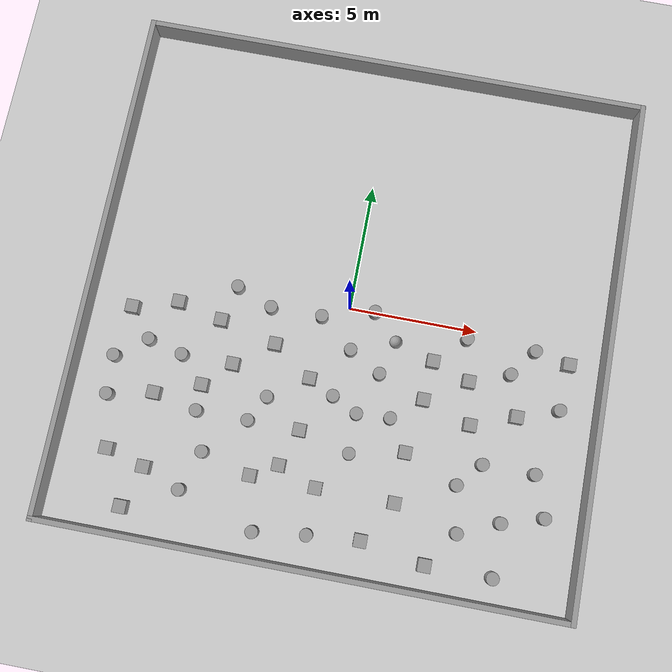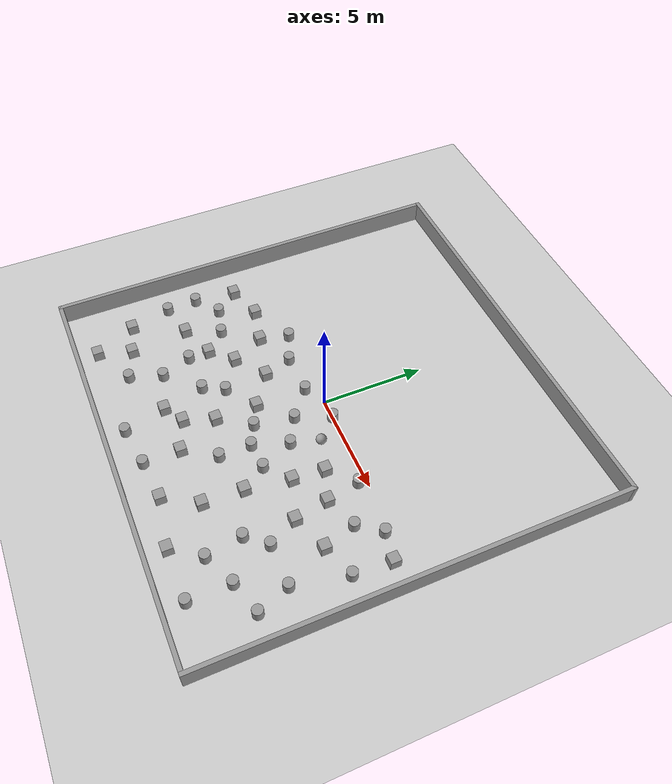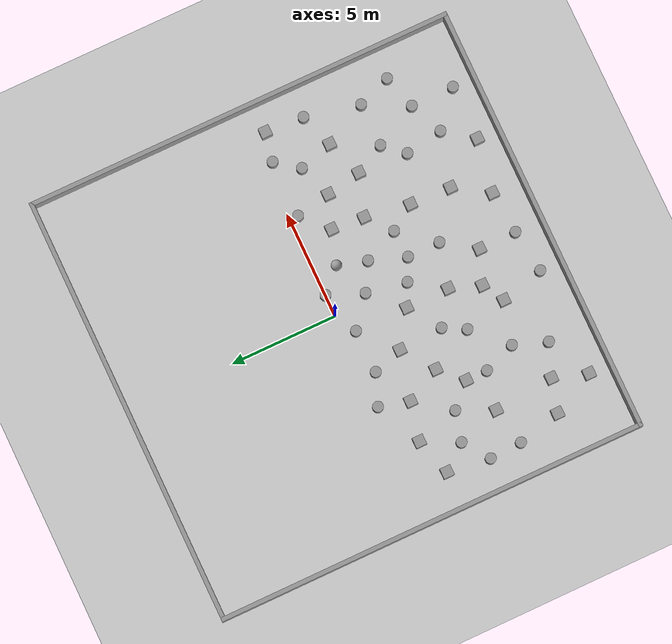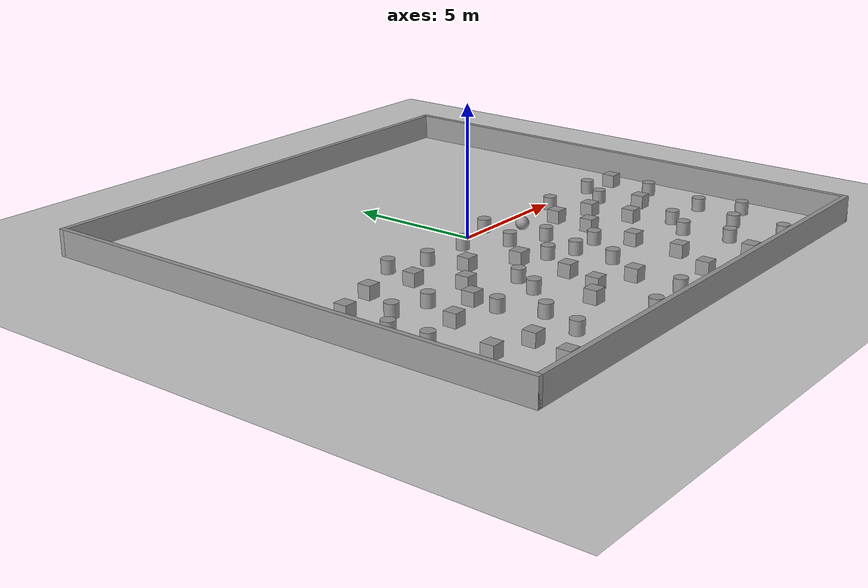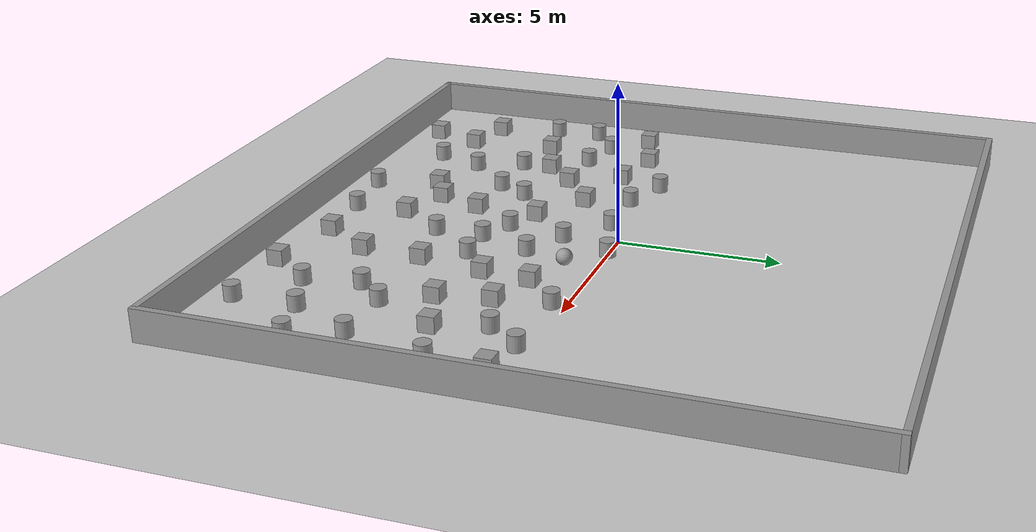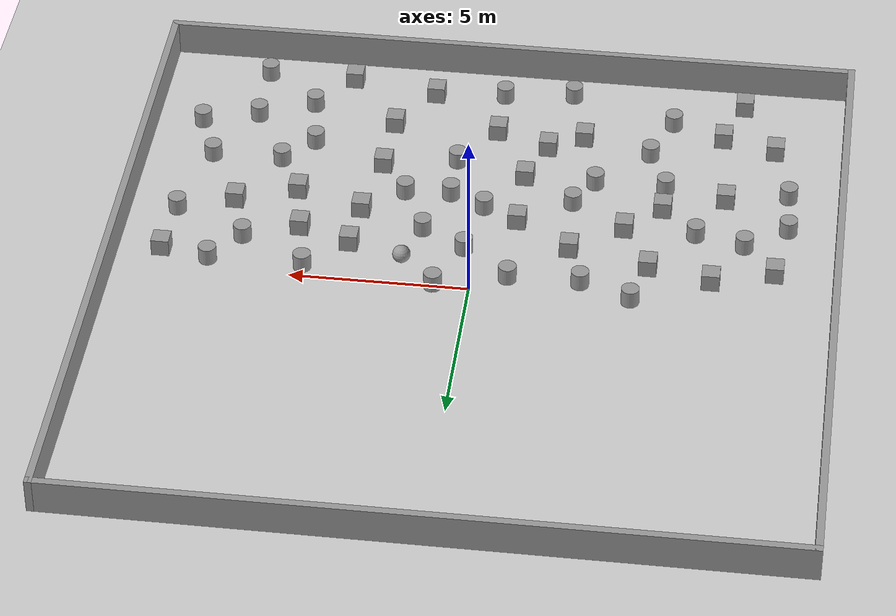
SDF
<sdf version="1.4">
 <world name="default">
  <model name="ground_plane">
   <static>1</static>
   <link name="link">
    <collision name="collision">
     <geometry><plane><normal>0 0 1</normal><size>100 100</size></plane></geometry>
     <surface><friction><ode><mu>100</mu><mu2>50</mu2></ode></friction></surface>
    </collision>
    <visual name="visual">
     <cast_shadows>0</cast_shadows>
     <geometry><plane><normal>0 0 1</normal><size>100 100</size></plane></geometry>
     <material>
      <script><uri>file://media/materials/scripts/gazebo.material</uri><name>Gazebo/Grey</name></script>
     </material>
    </visual>
    <velocity_decay><linear>0</linear><angular>0</angular></velocity_decay>
   </link>
  </model>
  <model name="obstacle">
   <link name="Wall_0">
    <collision name="Wall_0_Collision">
     <geometry><box><size>20.2 0.2 1</size></box></geometry>
     <pose>0 0 0.5 0 -0 0</pose>
    </collision>
    <visual name="Wall_0_Visual">
     <pose>0 0 0.5 0 -0 0</pose>
     <geometry><box><size>20.2 0.2 1</size></box></geometry>
     <material>
      <script><uri>file://media/materials/scripts/gazebo.material</uri><name>Gazebo/Grey</name></script>
     </material>
    </visual>
    <velocity_decay><linear>0</linear><angular>0</angular></velocity_decay>
    <pose>10 0 0 0 -0 1.5708</pose>
   </link>
   <link name="Wall_1">
    <collision name="Wall_1_Collision">
     <geometry><box><size>20.2 0.2 1</size></box></geometry>
     <pose>0 0 0.5 0 -0 0</pose>
    </collision>
    <visual name="Wall_1_Visual">
     <pose>0 0 0.5 0 -0 0</pose>
     <geometry><box><size>20.2 0.2 1</size></box></geometry>
     <material>
      <script><uri>file://media/materials/scripts/gazebo.material</uri><name>Gazebo/Grey</name></script>
     </material>
    </visual>
    <velocity_decay><linear>0</linear><angular>0</angular></velocity_decay>
    <pose>0 10 0 0 -0 3.14159</pose>
   </link>
   <link name="Wall_2">
    <collision name="Wall_2_Collision">
     <geometry><box><size>20.2 0.2 1</size></box></geometry>
     <pose>0 0 0.5 0 -0 0</pose>
    </collision>
    <visual name="Wall_2_Visual">
     <pose>0 0 0.5 0 -0 0</pose>
     <geometry><box><size>20.2 0.2 1</size></box></geometry>
     <material>
      <script><uri>file://media/materials/scripts/gazebo.material</uri><name>Gazebo/Grey</name></script>
     </material>
    </visual>
    <velocity_decay><linear>0</linear><angular>0</angular></velocity_decay>
    <pose>-10 0 0 0 0 -1.5708</pose>
   </link>
   <link name="Wall_3">
    <collision name="Wall_3_Collision">
     <geometry><box><size>20.2 0.2 1</size></box></geometry>
     <pose>0 0 0.5 0 -0 0</pose>
    </collision>
    <visual name="Wall_3_Visual">
     <pose>0 0 0.5 0 -0 0</pose>
     <geometry><box><size>20.2 0.2 1</size></box></geometry>
     <material>
      <script><uri>file://media/materials/scripts/gazebo.material</uri><name>Gazebo/Grey</name></script>
     </material>
    </visual>
    <velocity_decay><linear>0</linear><angular>0</angular></velocity_decay>
    <pose>0 -10 0 0 -0 0</pose>
   </link>
   <static>1</static>
  </model>
  <model name="unit_box_1">
   <pose>3.07223 -5.09197 0.25 0 1e-06 1e-06</pose>
   <link name="link">
    <inertial>
     <mass>1</mass>
     <inertia><ixx>1</ixx><ixy>0</ixy><ixz>0</ixz><iyy>1</iyy><iyz>0</iyz><izz>1</izz></inertia>
    </inertial>
    <collision name="collision"><geometry><box><size>0.5 0.5 0.5</size></box></geometry></collision>
    <visual name="visual">
     <geometry><box><size>0.5 0.5 0.5</size></box></geometry>
     <material>
      <script><uri>file://media/materials/scripts/gazebo.material</uri><name>Gazebo/Grey</name></script>
     </material>
    </visual>
    <velocity_decay><linear>0</linear><angular>0</angular></velocity_decay>
   </link>
   <static>0</static>
  </model>
  <model name="unit_box_2">
   <pose>-8 -7 0.249999 -2e-06 1e-06 -1e-06</pose>
   <link name="link">
    <inertial>
     <mass>1</mass>
     <inertia><ixx>1</ixx><ixy>0</ixy><ixz>0</ixz><iyy>1</iyy><iyz>0</iyz><izz>1</izz></inertia>
    </inertial>
    <collision name="collision"><geometry><box><size>0.5 0.5 0.5</size></box></geometry></collision>
    <visual name="visual">
     <geometry><box><size>0.5 0.5 0.5</size></box></geometry>
     <material>
      <script><uri>file://media/materials/scripts/gazebo.material</uri><name>Gazebo/Grey</name></script>
     </material>
    </visual>
    <velocity_decay><linear>0</linear><angular>0</angular></velocity_decay>
   </link>
   <static>0</static>
  </model>
  <model name="unit_cylinder_5">
   <pose>7.3318 -0.384496 0.249991 0 -0 0</pose>
   <link name="link">
    <inertial>
     <mass>1</mass>
     <inertia><ixx>1</ixx><ixy>0</ixy><ixz>0</ixz><iyy>1</iyy><iyz>0</iyz><izz>1</izz></inertia>
    </inertial>
    <collision name="collision">
     <geometry><cylinder><radius>0.25</radius><length>0.5</length></cylinder></geometry>
    </collision>
    <visual name="visual">
     <geometry><cylinder><radius>0.25</radius><length>0.5</length></cylinder></geometry>
     <material>
      <script><uri>file://media/materials/scripts/gazebo.material</uri><name>Gazebo/Grey</name></script>
     </material>
    </visual>
    <velocity_decay><linear>0</linear><angular>0</angular></velocity_decay>
   </link>
   <static>0</static>
  </model>
  <model name="unit_cylinder_6">
   <pose>-5 -8 0.25 0 -0 0</pose>
   <link name="link">
    <inertial>
     <mass>1</mass>
     <inertia><ixx>1</ixx><ixy>0</ixy><ixz>0</ixz><iyy>1</iyy><iyz>0</iyz><izz>1</izz></inertia>
    </inertial>
    <collision name="collision">
     <geometry><cylinder><radius>0.25</radius><length>0.5</length></cylinder></geometry>
    </collision>
    <visual name="visual">
     <geometry><cylinder><radius>0.25</radius><length>0.5</length></cylinder></geometry>
     <material>
      <script><uri>file://media/materials/scripts/gazebo.material</uri><name>Gazebo/Grey</name></script>
     </material>
    </visual>
    <velocity_decay><linear>0</linear><angular>0</angular></velocity_decay>
   </link>
   <static>0</static>
  </model>
  <model name="unit_cylinder_7">
   <pose>-7.37957 -2.65 0.249991 0 -0 0</pose>
   <link name="link">
    <inertial>
     <mass>1</mass>
     <inertia><ixx>1</ixx><ixy>0</ixy><ixz>0</ixz><iyy>1</iyy><iyz>0</iyz><izz>1</izz></inertia>
    </inertial>
    <collision name="collision">
     <geometry><cylinder><radius>0.25</radius><length>0.5</length></cylinder></geometry>
    </collision>
    <visual name="visual">
     <geometry><cylinder><radius>0.25</radius><length>0.5</length></cylinder></geometry>
     <material>
      <script><uri>file://media/materials/scripts/gazebo.material</uri><name>Gazebo/Grey</name></script>
     </material>
    </visual>
    <velocity_decay><linear>0</linear><angular>0</angular></velocity_decay>
   </link>
   <static>0</static>
  </model>
  <model name="unit_cylinder_11">
   <pose>7 -7 0.25 0 -0 0</pose>
   <link name="link">
    <inertial>
     <mass>1</mass>
     <inertia><ixx>1</ixx><ixy>0</ixy><ixz>0</ixz><iyy>1</iyy><iyz>0</iyz><izz>1</izz></inertia>
    </inertial>
    <collision name="collision">
     <geometry><cylinder><radius>0.25</radius><length>0.5</length></cylinder></geometry>
    </collision>
    <visual name="visual">
     <geometry><cylinder><radius>0.25</radius><length>0.5</length></cylinder></geometry>
     <material>
      <script><uri>file://media/materials/scripts/gazebo.material</uri><name>Gazebo/Grey</name></script>
     </material>
    </visual>
    <velocity_decay><linear>0</linear><angular>0</angular></velocity_decay>
   </link>
   <static>0</static>
  </model>
  <model name="unit_box_8">
   <pose>5 -2 0.249999 -2e-06 -1e-06 -3e-06</pose>
   <link name="link">
    <inertial>
     <mass>1</mass>
     <inertia><ixx>1</ixx><ixy>0</ixy><ixz>0</ixz><iyy>1</iyy><iyz>0</iyz><izz>1</izz></inertia>
    </inertial>
    <collision name="collision"><geometry><box><size>0.5 0.5 0.5</size></box></geometry></collision>
    <visual name="visual">
     <geometry><box><size>0.5 0.5 0.5</size></box></geometry>
     <material>
      <script><uri>file://media/materials/scripts/gazebo.material</uri><name>Gazebo/Grey</name></script>
     </material>
    </visual>
    <velocity_decay><linear>0</linear><angular>0</angular></velocity_decay>
   </link>
   <static>0</static>
  </model>
  <model name="unit_box_9">
   <pose>-4 -3 0.249999 1e-06 1e-06 0</pose>
   <link name="link">
    <inertial>
     <mass>1</mass>
     <inertia><ixx>1</ixx><ixy>0</ixy><ixz>0</ixz><iyy>1</iyy><iyz>0</iyz><izz>1</izz></inertia>
    </inertial>
    <collision name="collision"><geometry><box><size>0.5 0.5 0.5</size></box></geometry></collision>
    <visual name="visual">
     <geometry><box><size>0.5 0.5 0.5</size></box></geometry>
     <material>
      <script><uri>file://media/materials/scripts/gazebo.material</uri><name>Gazebo/Grey</name></script>
     </material>
    </visual>
    <velocity_decay><linear>0</linear><angular>0</angular></velocity_decay>
   </link>
   <static>0</static>
  </model>
  <model name="unit_box_10">
   <pose>3 -7 0.249999 -1e-06 -2e-06 1e-06</pose>
   <link name="link">
    <inertial>
     <mass>1</mass>
     <inertia><ixx>1</ixx><ixy>0</ixy><ixz>0</ixz><iyy>1</iyy><iyz>0</iyz><izz>1</izz></inertia>
    </inertial>
    <collision name="collision"><geometry><box><size>0.5 0.5 0.5</size></box></geometry></collision>
    <visual name="visual">
     <geometry><box><size>0.5 0.5 0.5</size></box></geometry>
     <material>
      <script><uri>file://media/materials/scripts/gazebo.material</uri><name>Gazebo/Grey</name></script>
     </material>
    </visual>
    <velocity_decay><linear>0</linear><angular>0</angular></velocity_decay>
   </link>
   <static>0</static>
  </model>
  <model name="unit_cylinder_12">
   <pose>-0 -8.74103 0.249999 -0 -0 -0</pose>
   <link name="link">
    <inertial>
     <mass>1</mass>
     <inertia><ixx>1</ixx><ixy>0</ixy><ixz>0</ixz><iyy>1</iyy><iyz>0</iyz><izz>1</izz></inertia>
    </inertial>
    <collision name="collision">
     <geometry><cylinder><radius>0.25</radius><length>0.5</length></cylinder></geometry>
    </collision>
    <visual name="visual">
     <geometry><cylinder><radius>0.25</radius><length>0.5</length></cylinder></geometry>
     <material>
      <script><uri>file://media/materials/scripts/gazebo.material</uri><name>Gazebo/Grey</name></script>
     </material>
    </visual>
    <velocity_decay><linear>0</linear><angular>0</angular></velocity_decay>
   </link>
   <static>0</static>
  </model>
  <model name="unit_box_11">
   <pose>-2.50033 -7 0.249999 -1e-06 -2e-06 1e-06</pose>
   <link name="link">
    <inertial>
     <mass>1</mass>
     <inertia><ixx>1</ixx><ixy>0</ixy><ixz>0</ixz><iyy>1</iyy><iyz>0</iyz><izz>1</izz></inertia>
    </inertial>
    <collision name="collision"><geometry><box><size>0.5 0.5 0.5</size></box></geometry></collision>
    <visual name="visual">
     <geometry><box><size>0.5 0.5 0.5</size></box></geometry>
     <material>
      <script><uri>file://media/materials/scripts/gazebo.material</uri><name>Gazebo/Grey</name></script>
     </material>
    </visual>
    <velocity_decay><linear>0</linear><angular>0</angular></velocity_decay>
   </link>
   <static>0</static>
  </model>
  <model name="unit_cylinder_16">
   <pose>-3 -0.561679 0.25 0 -0 0</pose>
   <link name="link">
    <inertial>
     <mass>1</mass>
     <inertia><ixx>1</ixx><ixy>0</ixy><ixz>0</ixz><iyy>1</iyy><iyz>0</iyz><izz>1</izz></inertia>
    </inertial>
    <collision name="collision">
     <geometry><cylinder><radius>0.25</radius><length>0.5</length></cylinder></geometry>
    </collision>
    <visual name="visual">
     <geometry><cylinder><radius>0.25</radius><length>0.5</length></cylinder></geometry>
     <material>
      <script><uri>file://media/materials/scripts/gazebo.material</uri><name>Gazebo/Grey</name></script>
     </material>
    </visual>
    <velocity_decay><linear>0</linear><angular>0</angular></velocity_decay>
   </link>
   <static>0</static>
  </model>
  <model name="unit_box_13">
   <pose>-0.999999 -3 0.249999 2e-06 1e-06 8.07794e-28</pose>
   <link name="link">
    <inertial>
     <mass>1</mass>
     <inertia><ixx>1</ixx><ixy>0</ixy><ixz>0</ixz><iyy>1</iyy><iyz>0</iyz><izz>1</izz></inertia>
    </inertial>
    <collision name="collision"><geometry><box><size>0.5 0.5 0.5</size></box></geometry></collision>
    <visual name="visual">
     <geometry><box><size>0.5 0.5 0.5</size></box></geometry>
     <material>
      <script><uri>file://media/materials/scripts/gazebo.material</uri><name>Gazebo/Grey</name></script>
     </material>
    </visual>
    <velocity_decay><linear>0</linear><angular>0</angular></velocity_decay>
   </link>
   <static>0</static>
  </model>
  <model name="unit_cylinder_17">
   <pose>1.5915 -2.34142 0.249999 -0 -0 -0</pose>
   <link name="link">
    <inertial>
     <mass>1</mass>
     <inertia><ixx>1</ixx><ixy>0</ixy><ixz>0</ixz><iyy>1</iyy><iyz>0</iyz><izz>1</izz></inertia>
    </inertial>
    <collision name="collision">
     <geometry><cylinder><radius>0.25</radius><length>0.5</length></cylinder></geometry>
    </collision>
    <visual name="visual">
     <geometry><cylinder><radius>0.25</radius><length>0.5</length></cylinder></geometry>
     <material>
      <script><uri>file://media/materials/scripts/gazebo.material</uri><name>Gazebo/Grey</name></script>
     </material>
    </visual>
    <velocity_decay><linear>0</linear><angular>0</angular></velocity_decay>
   </link>
   <static>0</static>
  </model>
  <model name="unit_cylinder_18">
   <pose>1 -5.52202 0.249999 -0 -0 -0</pose>
   <link name="link">
    <inertial>
     <mass>1</mass>
     <inertia><ixx>1</ixx><ixy>0</ixy><ixz>0</ixz><iyy>1</iyy><iyz>0</iyz><izz>1</izz></inertia>
    </inertial>
    <collision name="collision">
     <geometry><cylinder><radius>0.25</radius><length>0.5</length></cylinder></geometry>
    </collision>
    <visual name="visual">
     <geometry><cylinder><radius>0.25</radius><length>0.5</length></cylinder></geometry>
     <material>
      <script><uri>file://media/materials/scripts/gazebo.material</uri><name>Gazebo/Grey</name></script>
     </material>
    </visual>
    <velocity_decay><linear>0</linear><angular>0</angular></velocity_decay>
   </link>
   <static>0</static>
  </model>
  <model name="unit_cylinder_19">
   <pose>-5 -5 0.249999 -0 -0 -0</pose>
   <link name="link">
    <inertial>
     <mass>1</mass>
     <inertia><ixx>1</ixx><ixy>0</ixy><ixz>0</ixz><iyy>1</iyy><iyz>0</iyz><izz>1</izz></inertia>
    </inertial>
    <collision name="collision">
     <geometry><cylinder><radius>0.25</radius><length>0.5</length></cylinder></geometry>
    </collision>
    <visual name="visual">
     <geometry><cylinder><radius>0.25</radius><length>0.5</length></cylinder></geometry>
     <material>
      <script><uri>file://media/materials/scripts/gazebo.material</uri><name>Gazebo/Grey</name></script>
     </material>
    </visual>
    <velocity_decay><linear>0</linear><angular>0</angular></velocity_decay>
   </link>
   <static>0</static>
  </model>
  <model name="unit_cylinder_20">
   <pose>8 -5 0.25 0 -0 0</pose>
   <link name="link">
    <inertial>
     <mass>1</mass>
     <inertia><ixx>1</ixx><ixy>0</ixy><ixz>0</ixz><iyy>1</iyy><iyz>0</iyz><izz>1</izz></inertia>
    </inertial>
    <collision name="collision">
     <geometry><cylinder><radius>0.25</radius><length>0.5</length></cylinder></geometry>
    </collision>
    <visual name="visual">
     <geometry><cylinder><radius>0.25</radius><length>0.5</length></cylinder></geometry>
     <material>
      <script><uri>file://media/materials/scripts/gazebo.material</uri><name>Gazebo/Grey</name></script>
     </material>
    </visual>
    <velocity_decay><linear>0</linear><angular>0</angular></velocity_decay>
   </link>
   <static>0</static>
  </model>
  <model name="unit_box_15">
   <pose>8.674 -0.655566 0.249999 1e-06 2e-06 2e-06</pose>
   <link name="link">
    <inertial>
     <mass>1</mass>
     <inertia><ixx>1</ixx><ixy>0</ixy><ixz>0</ixz><iyy>1</iyy><iyz>0</iyz><izz>1</izz></inertia>
    </inertial>
    <collision name="collision"><geometry><box><size>0.5 0.5 0.5</size></box></geometry></collision>
    <visual name="visual">
     <geometry><box><size>0.5 0.5 0.5</size></box></geometry>
     <material>
      <script><uri>file://media/materials/scripts/gazebo.material</uri><name>Gazebo/Grey</name></script>
     </material>
    </visual>
    <velocity_decay><linear>0</linear><angular>0</angular></velocity_decay>
   </link>
   <static>0</static>
  </model>
  <model name="unit_box_16">
   <pose>7 -3 0.249999 -1e-06 -2e-06 -3e-06</pose>
   <link name="link">
    <inertial>
     <mass>1</mass>
     <inertia><ixx>1</ixx><ixy>0</ixy><ixz>0</ixz><iyy>1</iyy><iyz>0</iyz><izz>1</izz></inertia>
    </inertial>
    <collision name="collision"><geometry><box><size>0.5 0.5 0.5</size></box></geometry></collision>
    <visual name="visual">
     <geometry><box><size>0.5 0.5 0.5</size></box></geometry>
     <material>
      <script><uri>file://media/materials/scripts/gazebo.material</uri><name>Gazebo/Grey</name></script>
     </material>
    </visual>
    <velocity_decay><linear>0</linear><angular>0</angular></velocity_decay>
   </link>
   <static>0</static>
  </model>
  <model name="unit_cylinder_1">
   <pose>-1 -0.544952 0.25 0 -0 0</pose>
   <link name="link">
    <inertial>
     <mass>1</mass>
     <inertia><ixx>1</ixx><ixy>0</ixy><ixz>0</ixz><iyy>1</iyy><iyz>0</iyz><izz>1</izz></inertia>
    </inertial>
    <collision name="collision">
     <geometry><cylinder><radius>0.25</radius><length>0.5</length></cylinder></geometry>
    </collision>
    <visual name="visual">
     <geometry><cylinder><radius>0.25</radius><length>0.5</length></cylinder></geometry>
     <material>
      <script><uri>file://media/materials/scripts/gazebo.material</uri><name>Gazebo/Grey</name></script>
     </material>
    </visual>
    <velocity_decay><linear>0</linear><angular>0</angular></velocity_decay>
   </link>
   <static>0</static>
  </model>
  <model name="unit_cylinder_2_0">
   <pose>1 0 0.25 0 -0 0</pose>
   <link name="link">
    <inertial>
     <mass>1</mass>
     <inertia><ixx>1</ixx><ixy>0</ixy><ixz>0</ixz><iyy>1</iyy><iyz>0</iyz><izz>1</izz></inertia>
    </inertial>
    <collision name="collision">
     <geometry><cylinder><radius>0.25</radius><length>0.5</length></cylinder></geometry>
    </collision>
    <visual name="visual">
     <geometry><cylinder><radius>0.25</radius><length>0.5</length></cylinder></geometry>
     <material>
      <script><uri>file://media/materials/scripts/gazebo.material</uri><name>Gazebo/Grey</name></script>
     </material>
    </visual>
    <velocity_decay><linear>0</linear><angular>0</angular></velocity_decay>
   </link>
   <static>0</static>
  </model>
  <model name="unit_cylinder_3_0">
   <pose>0.338659 -1.63315 0.249995 0 -0 0</pose>
   <link name="link">
    <inertial>
     <mass>1</mass>
     <inertia><ixx>1</ixx><ixy>0</ixy><ixz>0</ixz><iyy>1</iyy><iyz>0</iyz><izz>1</izz></inertia>
    </inertial>
    <collision name="collision">
     <geometry><cylinder><radius>0.25</radius><length>0.5</length></cylinder></geometry>
    </collision>
    <visual name="visual">
     <geometry><cylinder><radius>0.25</radius><length>0.5</length></cylinder></geometry>
     <material>
      <script><uri>file://media/materials/scripts/gazebo.material</uri><name>Gazebo/Grey</name></script>
     </material>
    </visual>
    <velocity_decay><linear>0</linear><angular>0</angular></velocity_decay>
   </link>
   <static>0</static>
  </model>
  <model name="unit_box_4_0">
   <pose>-4.79758 -1.40389 0.249999 2e-06 1e-06 1e-06</pose>
   <link name="link">
    <inertial>
     <mass>1</mass>
     <inertia><ixx>1</ixx><ixy>0</ixy><ixz>0</ixz><iyy>1</iyy><iyz>0</iyz><izz>1</izz></inertia>
    </inertial>
    <collision name="collision"><geometry><box><size>0.5 0.5 0.5</size></box></geometry></collision>
    <visual name="visual">
     <geometry><box><size>0.5 0.5 0.5</size></box></geometry>
     <material>
      <script><uri>file://media/materials/scripts/gazebo.material</uri><name>Gazebo/Grey</name></script>
     </material>
    </visual>
    <velocity_decay><linear>0</linear><angular>0</angular></velocity_decay>
   </link>
   <static>0</static>
  </model>
  <model name="unit_box_5_0">
   <pose>-6.56142 -1 0.249999 2e-06 -8.07794e-28 1e-06</pose>
   <link name="link">
    <inertial>
     <mass>1</mass>
     <inertia><ixx>1</ixx><ixy>0</ixy><ixz>0</ixz><iyy>1</iyy><iyz>0</iyz><izz>1</izz></inertia>
    </inertial>
    <collision name="collision"><geometry><box><size>0.5 0.5 0.5</size></box></geometry></collision>
    <visual name="visual">
     <geometry><box><size>0.5 0.5 0.5</size></box></geometry>
     <material>
      <script><uri>file://media/materials/scripts/gazebo.material</uri><name>Gazebo/Grey</name></script>
     </material>
    </visual>
    <velocity_decay><linear>0</linear><angular>0</angular></velocity_decay>
   </link>
   <static>0</static>
  </model>
  <model name="unit_cylinder_6_0">
   <pose>-6 -3 0.25 0 -0 0</pose>
   <link name="link">
    <inertial>
     <mass>1</mass>
     <inertia><ixx>1</ixx><ixy>0</ixy><ixz>0</ixz><iyy>1</iyy><iyz>0</iyz><izz>1</izz></inertia>
    </inertial>
    <collision name="collision">
     <geometry><cylinder><radius>0.25</radius><length>0.5</length></cylinder></geometry>
    </collision>
    <visual name="visual">
     <geometry><cylinder><radius>0.25</radius><length>0.5</length></cylinder></geometry>
     <material>
      <script><uri>file://media/materials/scripts/gazebo.material</uri><name>Gazebo/Grey</name></script>
     </material>
    </visual>
    <velocity_decay><linear>0</linear><angular>0</angular></velocity_decay>
   </link>
   <static>0</static>
  </model>
  <model name="unit_cylinder_19_0">
   <pose>-8.48394 -5 0.25 0 -0 0</pose>
   <link name="link">
    <inertial>
     <mass>1</mass>
     <inertia><ixx>1</ixx><ixy>0</ixy><ixz>0</ixz><iyy>1</iyy><iyz>0</iyz><izz>1</izz></inertia>
    </inertial>
    <collision name="collision">
     <geometry><cylinder><radius>0.25</radius><length>0.5</length></cylinder></geometry>
    </collision>
    <visual name="visual">
     <geometry><cylinder><radius>0.25</radius><length>0.5</length></cylinder></geometry>
     <material>
      <script><uri>file://media/materials/scripts/gazebo.material</uri><name>Gazebo/Grey</name></script>
     </material>
    </visual>
    <velocity_decay><linear>0</linear><angular>0</angular></velocity_decay>
   </link>
   <static>0</static>
  </model>
  <model name="unit_box_18">
   <pose>-6.73354 -4.63038 0.249999 2e-06 -1e-06 -8.07794e-28</pose>
   <link name="link">
    <inertial>
     <mass>1</mass>
     <inertia><ixx>1</ixx><ixy>0</ixy><ixz>0</ixz><iyy>1</iyy><iyz>0</iyz><izz>1</izz></inertia>
    </inertial>
    <collision name="collision"><geometry><box><size>0.5 0.5 0.5</size></box></geometry></collision>
    <visual name="visual">
     <geometry><box><size>0.5 0.5 0.5</size></box></geometry>
     <material>
      <script><uri>file://media/materials/scripts/gazebo.material</uri><name>Gazebo/Grey</name></script>
     </material>
    </visual>
    <velocity_decay><linear>0</linear><angular>0</angular></velocity_decay>
   </link>
   <static>0</static>
  </model>
  <model name="unit_cylinder_20_0">
   <pose>-3 -5 0.25 0 -0 0</pose>
   <link name="link">
    <inertial>
     <mass>1</mass>
     <inertia><ixx>1</ixx><ixy>0</ixy><ixz>0</ixz><iyy>1</iyy><iyz>0</iyz><izz>1</izz></inertia>
    </inertial>
    <collision name="collision">
     <geometry><cylinder><radius>0.25</radius><length>0.5</length></cylinder></geometry>
    </collision>
    <visual name="visual">
     <geometry><cylinder><radius>0.25</radius><length>0.5</length></cylinder></geometry>
     <material>
      <script><uri>file://media/materials/scripts/gazebo.material</uri><name>Gazebo/Grey</name></script>
     </material>
    </visual>
    <velocity_decay><linear>0</linear><angular>0</angular></velocity_decay>
   </link>
   <static>0</static>
  </model>
  <model name="unit_box_19">
   <pose>-7 -9 0.249999 2e-06 -1e-06 -1e-06</pose>
   <link name="link">
    <inertial>
     <mass>1</mass>
     <inertia><ixx>1</ixx><ixy>0</ixy><ixz>0</ixz><iyy>1</iyy><iyz>0</iyz><izz>1</izz></inertia>
    </inertial>
    <collision name="collision"><geometry><box><size>0.5 0.5 0.5</size></box></geometry></collision>
    <visual name="visual">
     <geometry><box><size>0.5 0.5 0.5</size></box></geometry>
     <material>
      <script><uri>file://media/materials/scripts/gazebo.material</uri><name>Gazebo/Grey</name></script>
     </material>
    </visual>
    <velocity_decay><linear>0</linear><angular>0</angular></velocity_decay>
   </link>
   <static>0</static>
  </model>
  <model name="unit_box_20">
   <pose>-1 -5 0.25 0 0 -2e-06</pose>
   <link name="link">
    <inertial>
     <mass>1</mass>
     <inertia><ixx>1</ixx><ixy>0</ixy><ixz>0</ixz><iyy>1</iyy><iyz>0</iyz><izz>1</izz></inertia>
    </inertial>
    <collision name="collision"><geometry><box><size>0.5 0.5 0.5</size></box></geometry></collision>
    <visual name="visual">
     <geometry><box><size>0.5 0.5 0.5</size></box></geometry>
     <material>
      <script><uri>file://media/materials/scripts/gazebo.material</uri><name>Gazebo/Grey</name></script>
     </material>
    </visual>
    <velocity_decay><linear>0</linear><angular>0</angular></velocity_decay>
   </link>
   <static>0</static>
  </model>
  <model name="unit_cylinder_22">
   <pose>1 -4 0.25 0 -0 0</pose>
   <link name="link">
    <inertial>
     <mass>1</mass>
     <inertia><ixx>1</ixx><ixy>0</ixy><ixz>0</ixz><iyy>1</iyy><iyz>0</iyz><izz>1</izz></inertia>
    </inertial>
    <collision name="collision">
     <geometry><cylinder><radius>0.25</radius><length>0.5</length></cylinder></geometry>
    </collision>
    <visual name="visual">
     <geometry><cylinder><radius>0.25</radius><length>0.5</length></cylinder></geometry>
     <material>
      <script><uri>file://media/materials/scripts/gazebo.material</uri><name>Gazebo/Grey</name></script>
     </material>
    </visual>
    <velocity_decay><linear>0</linear><angular>0</angular></velocity_decay>
   </link>
   <static>0</static>
  </model>
  <model name="unit_box_21">
   <pose>3.41119 -3 0.249999 -1e-06 -2e-06 -4e-06</pose>
   <link name="link">
    <inertial>
     <mass>1</mass>
     <inertia><ixx>1</ixx><ixy>0</ixy><ixz>0</ixz><iyy>1</iyy><iyz>0</iyz><izz>1</izz></inertia>
    </inertial>
    <collision name="collision"><geometry><box><size>0.5 0.5 0.5</size></box></geometry></collision>
    <visual name="visual">
     <geometry><box><size>0.5 0.5 0.5</size></box></geometry>
     <material>
      <script><uri>file://media/materials/scripts/gazebo.material</uri><name>Gazebo/Grey</name></script>
     </material>
    </visual>
    <velocity_decay><linear>0</linear><angular>0</angular></velocity_decay>
   </link>
   <static>0</static>
  </model>
  <model name="unit_cylinder_23">
   <pose>6 -5 0.25 0 -0 0</pose>
   <link name="link">
    <inertial>
     <mass>1</mass>
     <inertia><ixx>1</ixx><ixy>0</ixy><ixz>0</ixz><iyy>1</iyy><iyz>0</iyz><izz>1</izz></inertia>
    </inertial>
    <collision name="collision">
     <geometry><cylinder><radius>0.25</radius><length>0.5</length></cylinder></geometry>
    </collision>
    <visual name="visual">
     <geometry><cylinder><radius>0.25</radius><length>0.5</length></cylinder></geometry>
     <material>
      <script><uri>file://media/materials/scripts/gazebo.material</uri><name>Gazebo/Grey</name></script>
     </material>
    </visual>
    <velocity_decay><linear>0</linear><angular>0</angular></velocity_decay>
   </link>
   <static>0</static>
  </model>
  <model name="unit_box_22">
   <pose>-0 -7 0.249999 -1e-06 -2e-06 3e-06</pose>
   <link name="link">
    <inertial>
     <mass>1</mass>
     <inertia><ixx>1</ixx><ixy>0</ixy><ixz>0</ixz><iyy>1</iyy><iyz>0</iyz><izz>1</izz></inertia>
    </inertial>
    <collision name="collision"><geometry><box><size>0.5 0.5 0.5</size></box></geometry></collision>
    <visual name="visual">
     <geometry><box><size>0.5 0.5 0.5</size></box></geometry>
     <material>
      <script><uri>file://media/materials/scripts/gazebo.material</uri><name>Gazebo/Grey</name></script>
     </material>
    </visual>
    <velocity_decay><linear>0</linear><angular>0</angular></velocity_decay>
   </link>
   <static>0</static>
  </model>
  <model name="unit_cylinder_24">
   <pose>5.45457 -7.66774 0.249999 -0 -0 -0</pose>
   <link name="link">
    <inertial>
     <mass>1</mass>
     <inertia><ixx>1</ixx><ixy>0</ixy><ixz>0</ixz><iyy>1</iyy><iyz>0</iyz><izz>1</izz></inertia>
    </inertial>
    <collision name="collision">
     <geometry><cylinder><radius>0.25</radius><length>0.5</length></cylinder></geometry>
    </collision>
    <visual name="visual">
     <geometry><cylinder><radius>0.25</radius><length>0.5</length></cylinder></geometry>
     <material>
      <script><uri>file://media/materials/scripts/gazebo.material</uri><name>Gazebo/Grey</name></script>
     </material>
    </visual>
    <velocity_decay><linear>0</linear><angular>0</angular></velocity_decay>
   </link>
   <static>0</static>
  </model>
  <model name="unit_box_23">
   <pose>2 -8.56932 0.249999 2e-06 1e-06 8.07794e-28</pose>
   <link name="link">
    <inertial>
     <mass>1</mass>
     <inertia><ixx>1</ixx><ixy>0</ixy><ixz>0</ixz><iyy>1</iyy><iyz>0</iyz><izz>1</izz></inertia>
    </inertial>
    <collision name="collision"><geometry><box><size>0.5 0.5 0.5</size></box></geometry></collision>
    <visual name="visual">
     <geometry><box><size>0.5 0.5 0.5</size></box></geometry>
     <material>
      <script><uri>file://media/materials/scripts/gazebo.material</uri><name>Gazebo/Grey</name></script>
     </material>
    </visual>
    <velocity_decay><linear>0</linear><angular>0</angular></velocity_decay>
   </link>
   <static>0</static>
  </model>
  <model name="unit_cylinder_25">
   <pose>-2 -9 0.25 0 -0 0</pose>
   <link name="link">
    <inertial>
     <mass>1</mass>
     <inertia><ixx>1</ixx><ixy>0</ixy><ixz>0</ixz><iyy>1</iyy><iyz>0</iyz><izz>1</izz></inertia>
    </inertial>
    <collision name="collision">
     <geometry><cylinder><radius>0.25</radius><length>0.5</length></cylinder></geometry>
    </collision>
    <visual name="visual">
     <geometry><cylinder><radius>0.25</radius><length>0.5</length></cylinder></geometry>
     <material>
      <script><uri>file://media/materials/scripts/gazebo.material</uri><name>Gazebo/Grey</name></script>
     </material>
    </visual>
    <velocity_decay><linear>0</linear><angular>0</angular></velocity_decay>
   </link>
   <static>0</static>
  </model>
  <model name="unit_box_24">
   <pose>4.47047 -9 0.249999 -1e-06 -2e-06 2e-06</pose>
   <link name="link">
    <inertial>
     <mass>1</mass>
     <inertia><ixx>1</ixx><ixy>0</ixy><ixz>0</ixz><iyy>1</iyy><iyz>0</iyz><izz>1</izz></inertia>
    </inertial>
    <collision name="collision"><geometry><box><size>0.5 0.5 0.5</size></box></geometry></collision>
    <visual name="visual">
     <geometry><box><size>0.5 0.5 0.5</size></box></geometry>
     <material>
      <script><uri>file://media/materials/scripts/gazebo.material</uri><name>Gazebo/Grey</name></script>
     </material>
    </visual>
    <velocity_decay><linear>0</linear><angular>0</angular></velocity_decay>
   </link>
   <static>0</static>
  </model>
  <model name="unit_cylinder_26">
   <pose>7 -9 0.25 0 -0 0</pose>
   <link name="link">
    <inertial>
     <mass>1</mass>
     <inertia><ixx>1</ixx><ixy>0</ixy><ixz>0</ixz><iyy>1</iyy><iyz>0</iyz><izz>1</izz></inertia>
    </inertial>
    <collision name="collision">
     <geometry><cylinder><radius>0.25</radius><length>0.5</length></cylinder></geometry>
    </collision>
    <visual name="visual">
     <geometry><cylinder><radius>0.25</radius><length>0.5</length></cylinder></geometry>
     <material>
      <script><uri>file://media/materials/scripts/gazebo.material</uri><name>Gazebo/Grey</name></script>
     </material>
    </visual>
    <velocity_decay><linear>0</linear><angular>0</angular></velocity_decay>
   </link>
   <static>0</static>
  </model>
  <model name="unit_cylinder_27">
   <pose>4.68576 -0.39227 0.249991 0 -0 0</pose>
   <link name="link">
    <inertial>
     <mass>1</mass>
     <inertia><ixx>1</ixx><ixy>0</ixy><ixz>0</ixz><iyy>1</iyy><iyz>0</iyz><izz>1</izz></inertia>
    </inertial>
    <collision name="collision">
     <geometry><cylinder><radius>0.25</radius><length>0.5</length></cylinder></geometry>
    </collision>
    <visual name="visual">
     <geometry><cylinder><radius>0.25</radius><length>0.5</length></cylinder></geometry>
     <material>
      <script><uri>file://media/materials/scripts/gazebo.material</uri><name>Gazebo/Grey</name></script>
     </material>
    </visual>
    <velocity_decay><linear>0</linear><angular>0</angular></velocity_decay>
   </link>
   <static>0</static>
  </model>
  <model name="unit_box_1_1">
   <pose>-2.55798 -1.94079 0.249999 1e-06 -1e-06 0</pose>
   <link name="link">
    <inertial>
     <mass>1</mass>
     <inertia><ixx>1</ixx><ixy>0</ixy><ixz>0</ixz><iyy>1</iyy><iyz>0</iyz><izz>1</izz></inertia>
    </inertial>
    <collision name="collision"><geometry><box><size>0.5 0.5 0.5</size></box></geometry></collision>
    <visual name="visual">
     <geometry><box><size>0.5 0.5 0.5</size></box></geometry>
     <material>
      <script><uri>file://media/materials/scripts/gazebo.material</uri><name>Gazebo/Grey</name></script>
     </material>
    </visual>
    <velocity_decay><linear>0</linear><angular>0</angular></velocity_decay>
   </link>
   <static>0</static>
  </model>
  <model name="unit_box_2_1">
   <pose>-5 -4 0.25 0 0 -1e-06</pose>
   <link name="link">
    <inertial>
     <mass>1</mass>
     <inertia><ixx>1</ixx><ixy>0</ixy><ixz>0</ixz><iyy>1</iyy><iyz>0</iyz><izz>1</izz></inertia>
    </inertial>
    <collision name="collision"><geometry><box><size>0.5 0.5 0.5</size></box></geometry></collision>
    <visual name="visual">
     <geometry><box><size>0.5 0.5 0.5</size></box></geometry>
     <material>
      <script><uri>file://media/materials/scripts/gazebo.material</uri><name>Gazebo/Grey</name></script>
     </material>
    </visual>
    <velocity_decay><linear>0</linear><angular>0</angular></velocity_decay>
   </link>
   <static>0</static>
  </model>
  <model name="unit_sphere_2">
   <pose>2 -1 0.25 0 -0 0</pose>
   <link name="link">
    <inertial>
     <mass>1</mass>
     <inertia><ixx>1</ixx><ixy>0</ixy><ixz>0</ixz><iyy>1</iyy><iyz>0</iyz><izz>1</izz></inertia>
    </inertial>
    <collision name="collision"><geometry><sphere><radius>0.25</radius></sphere></geometry></collision>
    <visual name="visual">
     <geometry><sphere><radius>0.25</radius></sphere></geometry>
     <material>
      <script><uri>file://media/materials/scripts/gazebo.material</uri><name>Gazebo/Grey</name></script>
     </material>
    </visual>
    <velocity_decay><linear>0</linear><angular>0</angular></velocity_decay>
   </link>
   <static>0</static>
  </model>
  <model name="unit_box_5_1">
   <pose>3.53122 -1.48004 0.249999 1e-06 -2e-06 -8.07794e-28</pose>
   <link name="link">
    <inertial>
     <mass>1</mass>
     <inertia><ixx>1</ixx><ixy>0</ixy><ixz>0</ixz><iyy>1</iyy><iyz>0</iyz><izz>1</izz></inertia>
    </inertial>
    <collision name="collision"><geometry><box><size>0.5 0.5 0.5</size></box></geometry></collision>
    <visual name="visual">
     <geometry><box><size>0.5 0.5 0.5</size></box></geometry>
     <material>
      <script><uri>file://media/materials/scripts/gazebo.material</uri><name>Gazebo/Grey</name></script>
     </material>
    </visual>
    <velocity_decay><linear>0</linear><angular>0</angular></velocity_decay>
   </link>
   <static>0</static>
  </model>
  <model name="unit_cylinder_1_0">
   <pose>6.53219 -1.44074 0.25 0 -0 0</pose>
   <link name="link">
    <inertial>
     <mass>1</mass>
     <inertia><ixx>1</ixx><ixy>0</ixy><ixz>0</ixz><iyy>1</iyy><iyz>0</iyz><izz>1</izz></inertia>
    </inertial>
    <collision name="collision">
     <geometry><cylinder><radius>0.25</radius><length>0.5</length></cylinder></geometry>
    </collision>
    <visual name="visual">
     <geometry><cylinder><radius>0.25</radius><length>0.5</length></cylinder></geometry>
     <material>
      <script><uri>file://media/materials/scripts/gazebo.material</uri><name>Gazebo/Grey</name></script>
     </material>
    </visual>
    <velocity_decay><linear>0</linear><angular>0</angular></velocity_decay>
   </link>
   <static>0</static>
  </model>
  <model name="unit_cylinder_2_1">
   <pose>-4.43046 0 0.25 0 -0 0</pose>
   <link name="link">
    <inertial>
     <mass>1</mass>
     <inertia><ixx>1</ixx><ixy>0</ixy><ixz>0</ixz><iyy>1</iyy><iyz>0</iyz><izz>1</izz></inertia>
    </inertial>
    <collision name="collision">
     <geometry><cylinder><radius>0.25</radius><length>0.5</length></cylinder></geometry>
    </collision>
    <visual name="visual">
     <geometry><cylinder><radius>0.25</radius><length>0.5</length></cylinder></geometry>
     <material>
      <script><uri>file://media/materials/scripts/gazebo.material</uri><name>Gazebo/Grey</name></script>
     </material>
    </visual>
    <velocity_decay><linear>0</linear><angular>0</angular></velocity_decay>
   </link>
   <static>0</static>
  </model>
  <model name="unit_box_6_1">
   <pose>-8.28623 -1.52346 0.249999 -1e-06 2e-06 -8.07794e-28</pose>
   <link name="link">
    <inertial>
     <mass>1</mass>
     <inertia><ixx>1</ixx><ixy>0</ixy><ixz>0</ixz><iyy>1</iyy><iyz>0</iyz><izz>1</izz></inertia>
    </inertial>
    <collision name="collision"><geometry><box><size>0.5 0.5 0.5</size></box></geometry></collision>
    <visual name="visual">
     <geometry><box><size>0.5 0.5 0.5</size></box></geometry>
     <material>
      <script><uri>file://media/materials/scripts/gazebo.material</uri><name>Gazebo/Grey</name></script>
     </material>
    </visual>
    <velocity_decay><linear>0</linear><angular>0</angular></velocity_decay>
   </link>
   <static>0</static>
  </model>
  <model name="unit_cylinder_4_1">
   <pose>-8.55641 -3.5053 0.25 0 -0 0</pose>
   <link name="link">
    <inertial>
     <mass>1</mass>
     <inertia><ixx>1</ixx><ixy>0</ixy><ixz>0</ixz><iyy>1</iyy><iyz>0</iyz><izz>1</izz></inertia>
    </inertial>
    <collision name="collision">
     <geometry><cylinder><radius>0.25</radius><length>0.5</length></cylinder></geometry>
    </collision>
    <visual name="visual">
     <geometry><cylinder><radius>0.25</radius><length>0.5</length></cylinder></geometry>
     <material>
      <script><uri>file://media/materials/scripts/gazebo.material</uri><name>Gazebo/Grey</name></script>
     </material>
    </visual>
    <velocity_decay><linear>0</linear><angular>0</angular></velocity_decay>
   </link>
   <static>0</static>
  </model>
  <model name="unit_cylinder_5_1">
   <pose>2.29277 -3.9308 0.25 0 -0 0</pose>
   <link name="link">
    <inertial>
     <mass>1</mass>
     <inertia><ixx>1</ixx><ixy>0</ixy><ixz>0</ixz><iyy>1</iyy><iyz>0</iyz><izz>1</izz></inertia>
    </inertial>
    <collision name="collision">
     <geometry><cylinder><radius>0.25</radius><length>0.5</length></cylinder></geometry>
    </collision>
    <visual name="visual">
     <geometry><cylinder><radius>0.25</radius><length>0.5</length></cylinder></geometry>
     <material>
      <script><uri>file://media/materials/scripts/gazebo.material</uri><name>Gazebo/Grey</name></script>
     </material>
    </visual>
    <velocity_decay><linear>0</linear><angular>0</angular></velocity_decay>
   </link>
   <static>0</static>
  </model>
  <model name="unit_box_7_1">
   <pose>5.30416 -3.62477 0.249999 1e-06 -2e-06 -8.07794e-28</pose>
   <link name="link">
    <inertial>
     <mass>1</mass>
     <inertia><ixx>1</ixx><ixy>0</ixy><ixz>0</ixz><iyy>1</iyy><iyz>0</iyz><izz>1</izz></inertia>
    </inertial>
    <collision name="collision"><geometry><box><size>0.5 0.5 0.5</size></box></geometry></collision>
    <visual name="visual">
     <geometry><box><size>0.5 0.5 0.5</size></box></geometry>
     <material>
      <script><uri>file://media/materials/scripts/gazebo.material</uri><name>Gazebo/Grey</name></script>
     </material>
    </visual>
    <velocity_decay><linear>0</linear><angular>0</angular></velocity_decay>
   </link>
   <static>0</static>
  </model>
  <model name="unit_cylinder_6_1">
   <pose>-4.44945 -6.46911 0.25 0 -0 0</pose>
   <link name="link">
    <inertial>
     <mass>1</mass>
     <inertia><ixx>1</ixx><ixy>0</ixy><ixz>0</ixz><iyy>1</iyy><iyz>0</iyz><izz>1</izz></inertia>
    </inertial>
    <collision name="collision">
     <geometry><cylinder><radius>0.25</radius><length>0.5</length></cylinder></geometry>
    </collision>
    <visual name="visual">
     <geometry><cylinder><radius>0.25</radius><length>0.5</length></cylinder></geometry>
     <material>
      <script><uri>file://media/materials/scripts/gazebo.material</uri><name>Gazebo/Grey</name></script>
     </material>
    </visual>
    <velocity_decay><linear>0</linear><angular>0</angular></velocity_decay>
   </link>
   <static>0</static>
  </model>
  <model name="unit_box_8_1">
   <pose>-6.48643 -7.41849 0.249999 1e-06 -1e-06 0</pose>
   <link name="link">
    <inertial>
     <mass>1</mass>
     <inertia><ixx>1</ixx><ixy>0</ixy><ixz>0</ixz><iyy>1</iyy><iyz>0</iyz><izz>1</izz></inertia>
    </inertial>
    <collision name="collision"><geometry><box><size>0.5 0.5 0.5</size></box></geometry></collision>
    <visual name="visual">
     <geometry><box><size>0.5 0.5 0.5</size></box></geometry>
     <material>
      <script><uri>file://media/materials/scripts/gazebo.material</uri><name>Gazebo/Grey</name></script>
     </material>
    </visual>
    <velocity_decay><linear>0</linear><angular>0</angular></velocity_decay>
   </link>
   <static>0</static>
  </model>
  <model name="unit_cylinder_7_1">
   <pose>0 -3.50278 0.25 0 -0 0</pose>
   <link name="link">
    <inertial>
     <mass>1</mass>
     <inertia><ixx>1</ixx><ixy>0</ixy><ixz>0</ixz><iyy>1</iyy><iyz>0</iyz><izz>1</izz></inertia>
    </inertial>
    <collision name="collision">
     <geometry><cylinder><radius>0.25</radius><length>0.5</length></cylinder></geometry>
    </collision>
    <visual name="visual">
     <geometry><cylinder><radius>0.25</radius><length>0.5</length></cylinder></geometry>
     <material>
      <script><uri>file://media/materials/scripts/gazebo.material</uri><name>Gazebo/Grey</name></script>
     </material>
    </visual>
    <velocity_decay><linear>0</linear><angular>0</angular></velocity_decay>
   </link>
   <static>0</static>
  </model>
  <model name="unit_cylinder_8_1">
   <pose>-2.45811 -4 0.25 0 -0 0</pose>
   <link name="link">
    <inertial>
     <mass>1</mass>
     <inertia><ixx>1</ixx><ixy>0</ixy><ixz>0</ixz><iyy>1</iyy><iyz>0</iyz><izz>1</izz></inertia>
    </inertial>
    <collision name="collision">
     <geometry><cylinder><radius>0.25</radius><length>0.5</length></cylinder></geometry>
    </collision>
    <visual name="visual">
     <geometry><cylinder><radius>0.25</radius><length>0.5</length></cylinder></geometry>
     <material>
      <script><uri>file://media/materials/scripts/gazebo.material</uri><name>Gazebo/Grey</name></script>
     </material>
    </visual>
    <velocity_decay><linear>0</linear><angular>0</angular></velocity_decay>
   </link>
   <static>0</static>
  </model>
  <model name="unit_cylinder_12_1">
   <pose>8.56402 -2.45795 0.25 0 -0 0</pose>
   <link name="link">
    <inertial>
     <mass>1</mass>
     <inertia><ixx>1</ixx><ixy>0</ixy><ixz>0</ixz><iyy>1</iyy><iyz>0</iyz><izz>1</izz></inertia>
    </inertial>
    <collision name="collision">
     <geometry><cylinder><radius>0.25</radius><length>0.5</length></cylinder></geometry>
    </collision>
    <visual name="visual">
     <geometry><cylinder><radius>0.25</radius><length>0.5</length></cylinder></geometry>
     <material>
      <script><uri>file://media/materials/scripts/gazebo.material</uri><name>Gazebo/Grey</name></script>
     </material>
    </visual>
    <velocity_decay><linear>0</linear><angular>0</angular></velocity_decay>
   </link>
   <static>0</static>
  </model>
  <model name="unit_cylinder_13_1">
   <pose>8.5727 -6.5296 0.25 0 -0 0</pose>
   <link name="link">
    <inertial>
     <mass>1</mass>
     <inertia><ixx>1</ixx><ixy>0</ixy><ixz>0</ixz><iyy>1</iyy><iyz>0</iyz><izz>1</izz></inertia>
    </inertial>
    <collision name="collision">
     <geometry><cylinder><radius>0.25</radius><length>0.5</length></cylinder></geometry>
    </collision>
    <visual name="visual">
     <geometry><cylinder><radius>0.25</radius><length>0.5</length></cylinder></geometry>
     <material>
      <script><uri>file://media/materials/scripts/gazebo.material</uri><name>Gazebo/Grey</name></script>
     </material>
    </visual>
    <velocity_decay><linear>0</linear><angular>0</angular></velocity_decay>
   </link>
   <static>0</static>
  </model>
  <model name="unit_box_12_1">
   <pose>-1.50956 -6.42711 0.249999 -1e-06 -1e-06 0</pose>
   <link name="link">
    <inertial>
     <mass>1</mass>
     <inertia><ixx>1</ixx><ixy>0</ixy><ixz>0</ixz><iyy>1</iyy><iyz>0</iyz><izz>1</izz></inertia>
    </inertial>
    <collision name="collision"><geometry><box><size>0.5 0.5 0.5</size></box></geometry></collision>
    <visual name="visual">
     <geometry><box><size>0.5 0.5 0.5</size></box></geometry>
     <material>
      <script><uri>file://media/materials/scripts/gazebo.material</uri><name>Gazebo/Grey</name></script>
     </material>
    </visual>
    <velocity_decay><linear>0</linear><angular>0</angular></velocity_decay>
   </link>
   <static>0</static>
  </model>
  <model name="unit_cylinder_14_1">
   <pose>5.17059 -5.9293 0.25 0 -0 0</pose>
   <link name="link">
    <inertial>
     <mass>1</mass>
     <inertia><ixx>1</ixx><ixy>0</ixy><ixz>0</ixz><iyy>1</iyy><iyz>0</iyz><izz>1</izz></inertia>
    </inertial>
    <collision name="collision">
     <geometry><cylinder><radius>0.25</radius><length>0.5</length></cylinder></geometry>
    </collision>
    <visual name="visual">
     <geometry><cylinder><radius>0.25</radius><length>0.5</length></cylinder></geometry>
     <material>
      <script><uri>file://media/materials/scripts/gazebo.material</uri><name>Gazebo/Grey</name></script>
     </material>
    </visual>
    <velocity_decay><linear>0</linear><angular>0</angular></velocity_decay>
   </link>
   <static>0</static>
  </model>
 </world>
</sdf>
